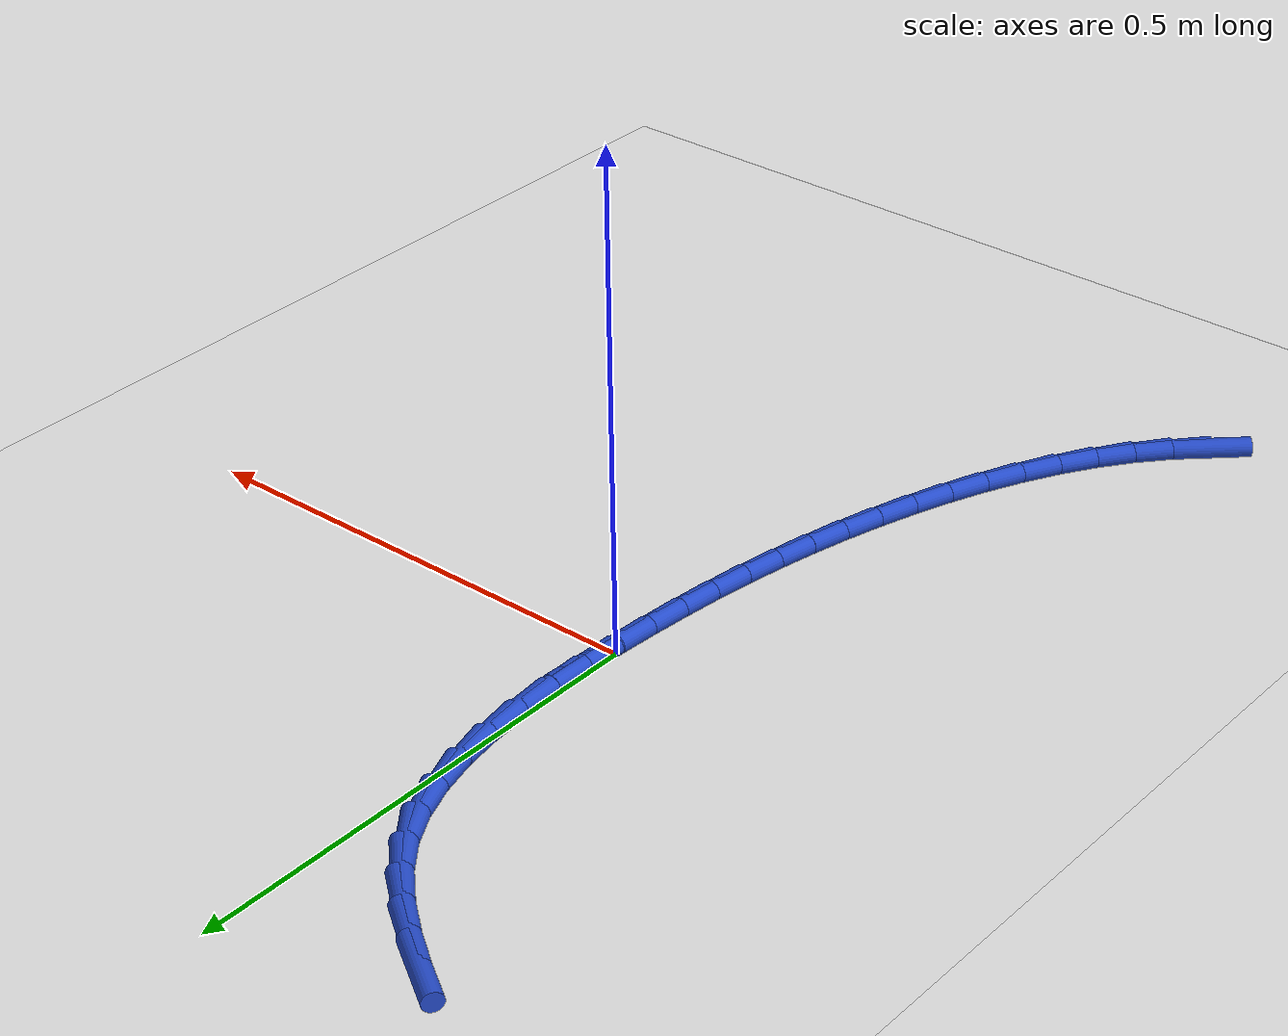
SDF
<sdf version="1.6">
 <world name="default">
  <model name="ground_plane">
   <static>1</static>
   <link name="link">
    <collision name="collision">
     <geometry><plane><normal>0 0 1</normal><size>100 100</size></plane></geometry>
     <surface><friction><ode><mu>100</mu><mu2>50</mu2></ode></friction></surface>
    </collision>
    <visual name="visual">
     <cast_shadows>0</cast_shadows>
     <geometry><plane><normal>0 0 1</normal><size>100 100</size></plane></geometry>
     <material>
      <script><uri>file://media/materials/scripts/gazebo.material</uri><name>Gazebo/WhiteGlow</name></script>
     </material>
    </visual>
   </link>
  </model>
  <model name="line">
   <link name="link_0">
    <pose>1.691355389077387e-17 2.0816681711721685e-17 0.01 0 1.57 1.522221613665021</pose>
    <collision name="collision">
     <geometry><cylinder><radius>0.01</radius><length>0.08</length></cylinder></geometry>
    </collision>
    <visual name="visual">
     <material>
      <script><name>Gazebo/Blue</name><uri>file://media/materials/scripts/gazebo.material</uri></script>
     </material>
     <geometry><cylinder><radius>0.01</radius><length>0.08</length></cylinder></geometry>
    </visual>
   </link>
   <link name="link_1">
    <pose>0.0020679108261999067 0.042538267822976816 0.01 0 1.57 1.5533333395738829</pose>
    <collision name="collision">
     <geometry><cylinder><radius>0.01</radius><length>0.08</length></cylinder></geometry>
    </collision>
    <visual name="visual">
     <material>
      <script><name>Gazebo/Blue</name><uri>file://media/materials/scripts/gazebo.material</uri></script>
     </material>
     <geometry><cylinder><radius>0.01</radius><length>0.08</length></cylinder></geometry>
    </visual>
   </link>
   <link name="link_2">
    <pose>0.0028172999088813145 0.08544690050818356 0.01 0 1.57 -1.5443978900608295</pose>
    <collision name="collision">
     <geometry><cylinder><radius>0.01</radius><length>0.08</length></cylinder></geometry>
    </collision>
    <visual name="visual">
     <material>
      <script><name>Gazebo/Blue</name><uri>file://media/materials/scripts/gazebo.material</uri></script>
     </material>
     <geometry><cylinder><radius>0.01</radius><length>0.08</length></cylinder></geometry>
    </visual>
   </link>
   <link name="link_3">
    <pose>0.0016885103330667199 0.12819668018878616 0.01 0 1.57 -1.486203625077718</pose>
    <collision name="collision">
     <geometry><cylinder><radius>0.01</radius><length>0.08</length></cylinder></geometry>
    </collision>
    <visual name="visual">
     <material>
      <script><name>Gazebo/Blue</name><uri>file://media/materials/scripts/gazebo.material</uri></script>
     </material>
     <geometry><cylinder><radius>0.01</radius><length>0.08</length></cylinder></geometry>
    </visual>
   </link>
   <link name="link_4">
    <pose>-0.0018781148162213962 0.1702583889979505 0.01 0 1.57 -1.4114486038348077</pose>
    <collision name="collision">
     <geometry><cylinder><radius>0.01</radius><length>0.08</length></cylinder></geometry>
    </collision>
    <visual name="visual">
     <material>
      <script><name>Gazebo/Blue</name><uri>file://media/materials/scripts/gazebo.material</uri></script>
     </material>
     <geometry><cylinder><radius>0.01</radius><length>0.08</length></cylinder></geometry>
    </visual>
   </link>
   <link name="link_5">
    <pose>-0.00844223245396055 0.21110280906884246 0.01 0 1.57 -1.3174872434004243</pose>
    <collision name="collision">
     <geometry><cylinder><radius>0.01</radius><length>0.08</length></cylinder></geometry>
    </collision>
    <visual name="visual">
     <material>
      <script><name>Gazebo/Blue</name><uri>file://media/materials/scripts/gazebo.material</uri></script>
     </material>
     <geometry><cylinder><radius>0.01</radius><length>0.08</length></cylinder></geometry>
    </visual>
   </link>
   <link name="link_6">
    <pose>-0.01856349949512827 0.2502007225346279 0.01 0 1.57 -1.2018329938862848</pose>
    <collision name="collision">
     <geometry><cylinder><radius>0.01</radius><length>0.08</length></cylinder></geometry>
    </collision>
    <visual name="visual">
     <material>
      <script><name>Gazebo/Blue</name><uri>file://media/materials/scripts/gazebo.material</uri></script>
     </material>
     <geometry><cylinder><radius>0.01</radius><length>0.08</length></cylinder></geometry>
    </visual>
   </link>
   <link name="link_7">
    <pose>-0.03280157285470206 0.28702291152847265 0.01 0 1.57 -1.0633369888944393</pose>
    <collision name="collision">
     <geometry><cylinder><radius>0.01</radius><length>0.08</length></cylinder></geometry>
    </collision>
    <visual name="visual">
     <material>
      <script><name>Gazebo/Blue</name><uri>file://media/materials/scripts/gazebo.material</uri></script>
     </material>
     <geometry><cylinder><radius>0.01</radius><length>0.08</length></cylinder></geometry>
    </visual>
   </link>
   <link name="link_8">
    <pose>-0.05171610944765947 0.3210401581835427 0.01 0 1.57 -0.9095631473061758</pose>
    <collision name="collision">
     <geometry><cylinder><radius>0.01</radius><length>0.08</length></cylinder></geometry>
    </collision>
    <visual name="visual">
     <material>
      <script><name>Gazebo/Blue</name><uri>file://media/materials/scripts/gazebo.material</uri></script>
     </material>
     <geometry><cylinder><radius>0.01</radius><length>0.08</length></cylinder></geometry>
    </visual>
   </link>
   <link name="link_9">
    <pose>-0.07569130028877238 0.35185332037245287 0.01 0 1.57 -0.7767427714807227</pose>
    <collision name="collision">
     <geometry><cylinder><radius>0.01</radius><length>0.08</length></cylinder></geometry>
    </collision>
    <visual name="visual">
     <material>
      <script><name>Gazebo/Blue</name><uri>file://media/materials/scripts/gazebo.material</uri></script>
     </material>
     <geometry><cylinder><radius>0.01</radius><length>0.08</length></cylinder></geometry>
    </visual>
   </link>
   <link name="link_10">
    <pose>-0.104122344304829 0.3797964119656669 0.01 0 1.57 -0.6769317993643341</pose>
    <collision name="collision">
     <geometry><cylinder><radius>0.01</radius><length>0.08</length></cylinder></geometry>
    </collision>
    <visual name="visual">
     <material>
      <script><name>Gazebo/Blue</name><uri>file://media/materials/scripts/gazebo.material</uri></script>
     </material>
     <geometry><cylinder><radius>0.01</radius><length>0.08</length></cylinder></geometry>
    </visual>
   </link>
   <link name="link_11">
    <pose>-0.13605824960355506 0.4054600837455915 0.01 0 1.57 -0.6074608588814171</pose>
    <collision name="collision">
     <geometry><cylinder><radius>0.01</radius><length>0.08</length></cylinder></geometry>
    </collision>
    <visual name="visual">
     <material>
      <script><name>Gazebo/Blue</name><uri>file://media/materials/scripts/gazebo.material</uri></script>
     </material>
     <geometry><cylinder><radius>0.01</radius><length>0.08</length></cylinder></geometry>
    </visual>
   </link>
   <link name="link_12">
    <pose>-0.17054765632889737 0.42943525927219617 0.01 0 1.57 -0.5649573330623945</pose>
    <collision name="collision">
     <geometry><cylinder><radius>0.01</radius><length>0.08</length></cylinder></geometry>
    </collision>
    <visual name="visual">
     <material>
      <script><name>Gazebo/Blue</name><uri>file://media/materials/scripts/gazebo.material</uri></script>
     </material>
     <geometry><cylinder><radius>0.01</radius><length>0.08</length></cylinder></geometry>
    </visual>
   </link>
   <link name="link_173">
    <pose>-0.23313979604100735 -0.6345966476843479 0.01 0 1.57 0.751945595304577</pose>
    <collision name="collision">
     <geometry><cylinder><radius>0.01</radius><length>0.08</length></cylinder></geometry>
    </collision>
    <visual name="visual">
     <material>
      <script><name>Gazebo/Blue</name><uri>file://media/materials/scripts/gazebo.material</uri></script>
     </material>
     <geometry><cylinder><radius>0.01</radius><length>0.08</length></cylinder></geometry>
    </visual>
   </link>
   <link name="link_174">
    <pose>-0.20458342633279064 -0.6078896688271277 0.01 0 1.57 0.84710077047624</pose>
    <collision name="collision">
     <geometry><cylinder><radius>0.01</radius><length>0.08</length></cylinder></geometry>
    </collision>
    <visual name="visual">
     <material>
      <script><name>Gazebo/Blue</name><uri>file://media/materials/scripts/gazebo.material</uri></script>
     </material>
     <geometry><cylinder><radius>0.01</radius><length>0.08</length></cylinder></geometry>
    </visual>
   </link>
   <link name="link_175">
    <pose>-0.17837877346601796 -0.5782339015875454 0.01 0 1.57 0.9329848753724564</pose>
    <collision name="collision">
     <geometry><cylinder><radius>0.01</radius><length>0.08</length></cylinder></geometry>
    </collision>
    <visual name="visual">
     <material>
      <script><name>Gazebo/Blue</name><uri>file://media/materials/scripts/gazebo.material</uri></script>
     </material>
     <geometry><cylinder><radius>0.01</radius><length>0.08</length></cylinder></geometry>
    </visual>
   </link>
   <link name="link_176">
    <pose>-0.15445715617005093 -0.5459574459777553 0.01 0 1.57 1.0082067803645078</pose>
    <collision name="collision">
     <geometry><cylinder><radius>0.01</radius><length>0.08</length></cylinder></geometry>
    </collision>
    <visual name="visual">
     <material>
      <script><name>Gazebo/Blue</name><uri>file://media/materials/scripts/gazebo.material</uri></script>
     </material>
     <geometry><cylinder><radius>0.01</radius><length>0.08</length></cylinder></geometry>
    </visual>
   </link>
   <link name="link_177">
    <pose>-0.13271096735754778 -0.5114704952699459 0.01 0 1.57 1.0738885030198977</pose>
    <collision name="collision">
     <geometry><cylinder><radius>0.01</radius><length>0.08</length></cylinder></geometry>
    </collision>
    <visual name="visual">
     <material>
      <script><name>Gazebo/Blue</name><uri>file://media/materials/scripts/gazebo.material</uri></script>
     </material>
     <geometry><cylinder><radius>0.01</radius><length>0.08</length></cylinder></geometry>
    </visual>
   </link>
   <link name="link_178">
    <pose>-0.11303259994116692 -0.47518324273630674 0.01 0 1.57 1.1312225622317842</pose>
    <collision name="collision">
     <geometry><cylinder><radius>0.01</radius><length>0.08</length></cylinder></geometry>
    </collision>
    <visual name="visual">
     <material>
      <script><name>Gazebo/Blue</name><uri>file://media/materials/scripts/gazebo.material</uri></script>
     </material>
     <geometry><cylinder><radius>0.01</radius><length>0.08</length></cylinder></geometry>
    </visual>
   </link>
   <link name="link_179">
    <pose>-0.09531444683356698 -0.4375058816490273 0.01 0 1.57 1.1813434312232203</pose>
    <collision name="collision">
     <geometry><cylinder><radius>0.01</radius><length>0.08</length></cylinder></geometry>
    </collision>
    <visual name="visual">
     <material>
      <script><name>Gazebo/Blue</name><uri>file://media/materials/scripts/gazebo.material</uri></script>
     </material>
     <geometry><cylinder><radius>0.01</radius><length>0.08</length></cylinder></geometry>
    </visual>
   </link>
   <link name="link_180">
    <pose>-0.0794489009474055 -0.39884860528029514 0.01 0 1.57 1.2252672335423482</pose>
    <collision name="collision">
     <geometry><cylinder><radius>0.01</radius><length>0.08</length></cylinder></geometry>
    </collision>
    <visual name="visual">
     <material>
      <script><name>Gazebo/Blue</name><uri>file://media/materials/scripts/gazebo.material</uri></script>
     </material>
     <geometry><cylinder><radius>0.01</radius><length>0.08</length></cylinder></geometry>
    </visual>
   </link>
   <link name="link_181">
    <pose>-0.0653283551953413 -0.3596216069023001 0.01 0 1.57 1.263872944286684</pose>
    <collision name="collision">
     <geometry><cylinder><radius>0.01</radius><length>0.08</length></cylinder></geometry>
    </collision>
    <visual name="visual">
     <material>
      <script><name>Gazebo/Blue</name><uri>file://media/materials/scripts/gazebo.material</uri></script>
     </material>
     <geometry><cylinder><radius>0.01</radius><length>0.08</length></cylinder></geometry>
    </visual>
   </link>
   <link name="link_182">
    <pose>-0.05284520518939026 -0.32023494676983033 0.01 0 1.57 1.2987887489374903</pose>
    <collision name="collision">
     <geometry><cylinder><radius>0.01</radius><length>0.08</length></cylinder></geometry>
    </collision>
    <visual name="visual">
     <material>
      <script><name>Gazebo/Blue</name><uri>file://media/materials/scripts/gazebo.material</uri></script>
     </material>
     <geometry><cylinder><radius>0.01</radius><length>0.08</length></cylinder></geometry>
    </visual>
   </link>
   <link name="link_183">
    <pose>-0.04189438617422859 -0.2809735385729094 0.01 0 1.57 1.332691974334463</pose>
    <collision name="collision">
     <geometry><cylinder><radius>0.01</radius><length>0.08</length></cylinder></geometry>
    </collision>
    <visual name="visual">
     <material>
      <script><name>Gazebo/Blue</name><uri>file://media/materials/scripts/gazebo.material</uri></script>
     </material>
     <geometry><cylinder><radius>0.01</radius><length>0.08</length></cylinder></geometry>
    </visual>
   </link>
   <link name="link_184">
    <pose>-0.03237808857424569 -0.24176477940789096 0.01 0 1.57 1.3655854587582363</pose>
    <collision name="collision">
     <geometry><cylinder><radius>0.01</radius><length>0.08</length></cylinder></geometry>
    </collision>
    <visual name="visual">
     <material>
      <script><name>Gazebo/Blue</name><uri>file://media/materials/scripts/gazebo.material</uri></script>
     </material>
     <geometry><cylinder><radius>0.01</radius><length>0.08</length></cylinder></geometry>
    </visual>
   </link>
   <link name="link_185">
    <pose>-0.024199790019921875 -0.20247263616606548 0.01 0 1.57 1.3970031213598095</pose>
    <collision name="collision">
     <geometry><cylinder><radius>0.01</radius><length>0.08</length></cylinder></geometry>
    </collision>
    <visual name="visual">
     <material>
      <script><name>Gazebo/Blue</name><uri>file://media/materials/scripts/gazebo.material</uri></script>
     </material>
     <geometry><cylinder><radius>0.01</radius><length>0.08</length></cylinder></geometry>
    </visual>
   </link>
   <link name="link_186">
    <pose>-0.017262968141737573 -0.16296107573872418 0.01 0 1.57 1.4265259703128421</pose>
    <collision name="collision">
     <geometry><cylinder><radius>0.01</radius><length>0.08</length></cylinder></geometry>
    </collision>
    <visual name="visual">
     <material>
      <script><name>Gazebo/Blue</name><uri>file://media/materials/scripts/gazebo.material</uri></script>
     </material>
     <geometry><cylinder><radius>0.01</radius><length>0.08</length></cylinder></geometry>
    </visual>
   </link>
   <link name="link_187">
    <pose>-0.011471100570172829 -0.12309406501715607 0.01 0 1.57 1.4538005560328278</pose>
    <collision name="collision">
     <geometry><cylinder><radius>0.01</radius><length>0.08</length></cylinder></geometry>
    </collision>
    <visual name="visual">
     <material>
      <script><name>Gazebo/Blue</name><uri>file://media/materials/scripts/gazebo.material</uri></script>
     </material>
     <geometry><cylinder><radius>0.01</radius><length>0.08</length></cylinder></geometry>
    </visual>
   </link>
   <link name="link_188">
    <pose>-0.006727664935708106 -0.08273557089265232 0.01 0 1.57 1.4785510550429648</pose>
    <collision name="collision">
     <geometry><cylinder><radius>0.01</radius><length>0.08</length></cylinder></geometry>
    </collision>
    <visual name="visual">
     <material>
      <script><name>Gazebo/Blue</name><uri>file://media/materials/scripts/gazebo.material</uri></script>
     </material>
     <geometry><cylinder><radius>0.01</radius><length>0.08</length></cylinder></geometry>
    </visual>
   </link>
   <link name="link_189">
    <pose>-0.002936138868823725 -0.04174956025650353 0.01 0 1.57 1.5005845089031045</pose>
    <collision name="collision">
     <geometry><cylinder><radius>0.01</radius><length>0.08</length></cylinder></geometry>
    </collision>
    <visual name="visual">
     <material>
      <script><name>Gazebo/Blue</name><uri>file://media/materials/scripts/gazebo.material</uri></script>
     </material>
     <geometry><cylinder><radius>0.01</radius><length>0.08</length></cylinder></geometry>
    </visual>
   </link>
   <link name="link_190">
    <pose>6.1257422745431e-18 -1.1102230246251565e-16 0.01 0 1.57 1.519789779438581</pose>
    <collision name="collision">
     <geometry><cylinder><radius>0.01</radius><length>0.08</length></cylinder></geometry>
    </collision>
    <visual name="visual">
     <material>
      <script><name>Gazebo/Blue</name><uri>file://media/materials/scripts/gazebo.material</uri></script>
     </material>
     <geometry><cylinder><radius>0.01</radius><length>0.08</length></cylinder></geometry>
    </visual>
   </link>
   <link name="link_191">
    <pose>0.0021772740402827683 0.0426491429855674 0.01 0 1.57 1.519789779438581</pose>
    <collision name="collision">
     <geometry><cylinder><radius>0.01</radius><length>0.08</length></cylinder></geometry>
    </collision>
    <visual name="visual">
     <material>
      <script><name>Gazebo/Blue</name><uri>file://media/materials/scripts/gazebo.material</uri></script>
     </material>
     <geometry><cylinder><radius>0.01</radius><length>0.08</length></cylinder></geometry>
    </visual>
   </link>
  </model>
 </world>
</sdf>
